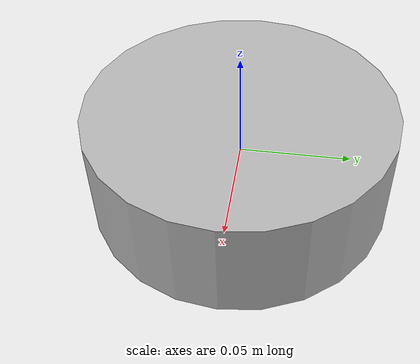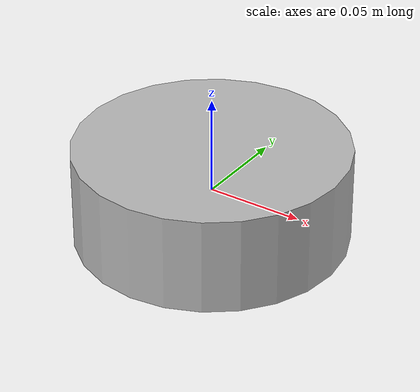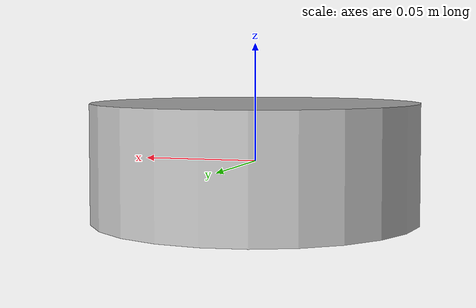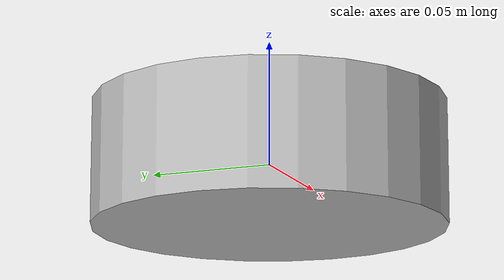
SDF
<?xml version="1.0"?>
<sdf version="1.9">

  <model name="br_lidar">

    <static>true</static>

    <link name="lidar_link">

      <!-- Visible LiDAR -->
      <visual name="lidar_visual">
        <geometry>
          <cylinder>
            <radius>0.07</radius>
            <length>0.05</length>
          </cylinder>
        </geometry>
      </visual>

      <!-- CPU LiDAR -->
      <sensor name="lidar_sensor" type="ray">

        <pose>0 0 0 0 0 0</pose>

        <update_rate>10</update_rate>

        <ray>
          <scan>
            <horizontal>
              <samples>720</samples>
              <resolution>1</resolution>
              <min_angle>-3.14159265359</min_angle>
              <max_angle>3.14159265359</max_angle>
            </horizontal>
          </scan>

          <range>
            <min>0.12</min>
            <max>12.0</max>
            <resolution>0.01</resolution>
          </range>
        </ray>

        <always_on>true</always_on>
        <visualize>true</visualize>

        <topic>/scan</topic>

      </sensor>

    </link>

  </model>

</sdf>
